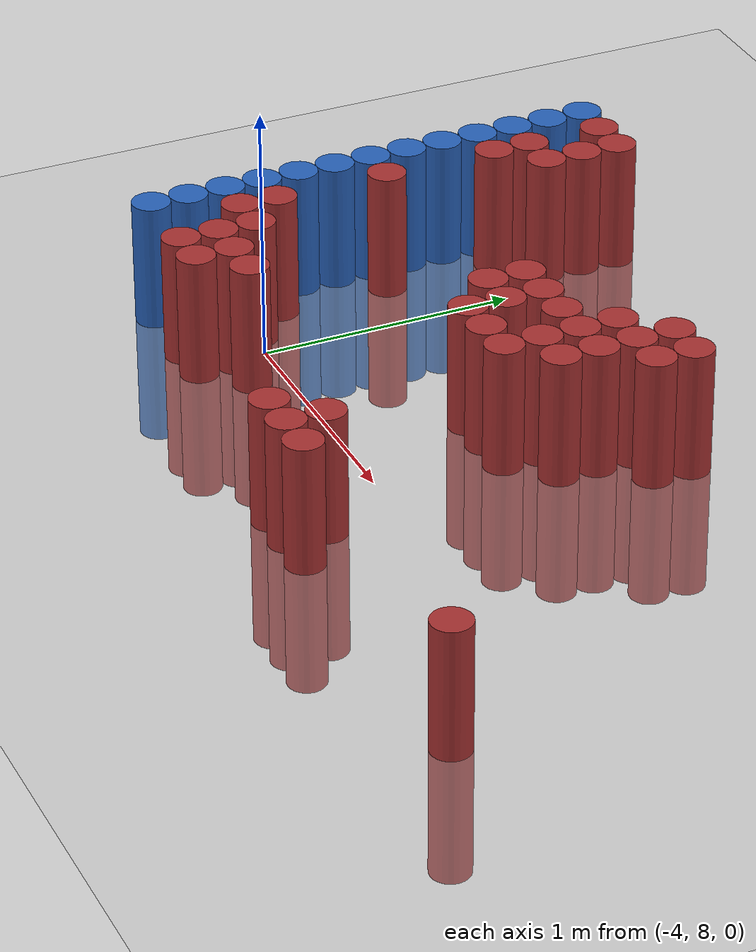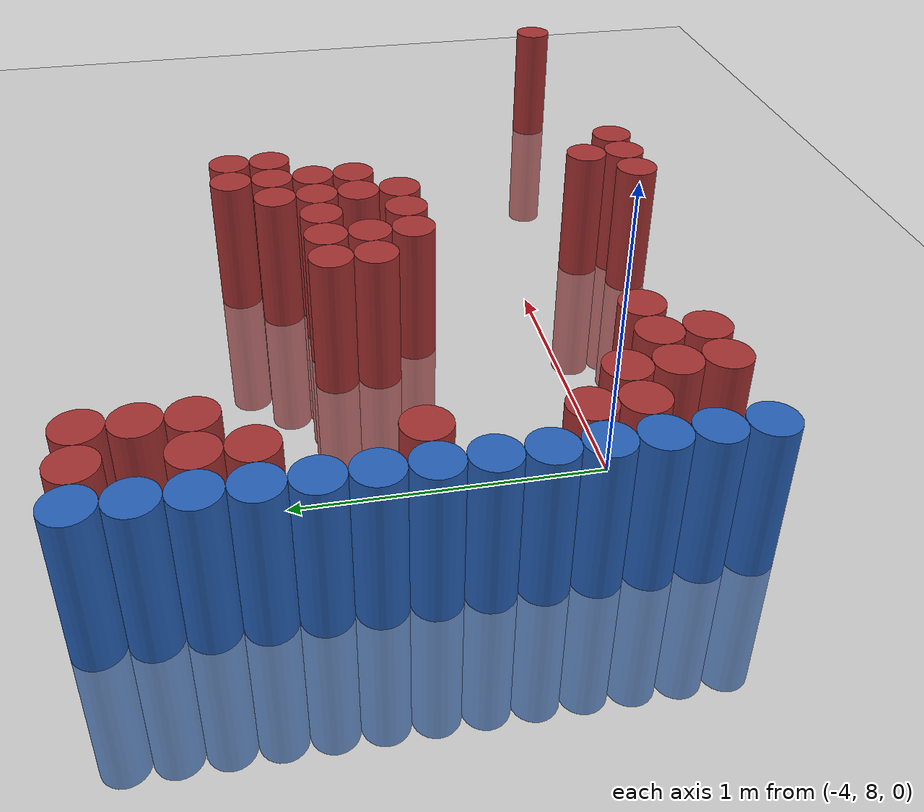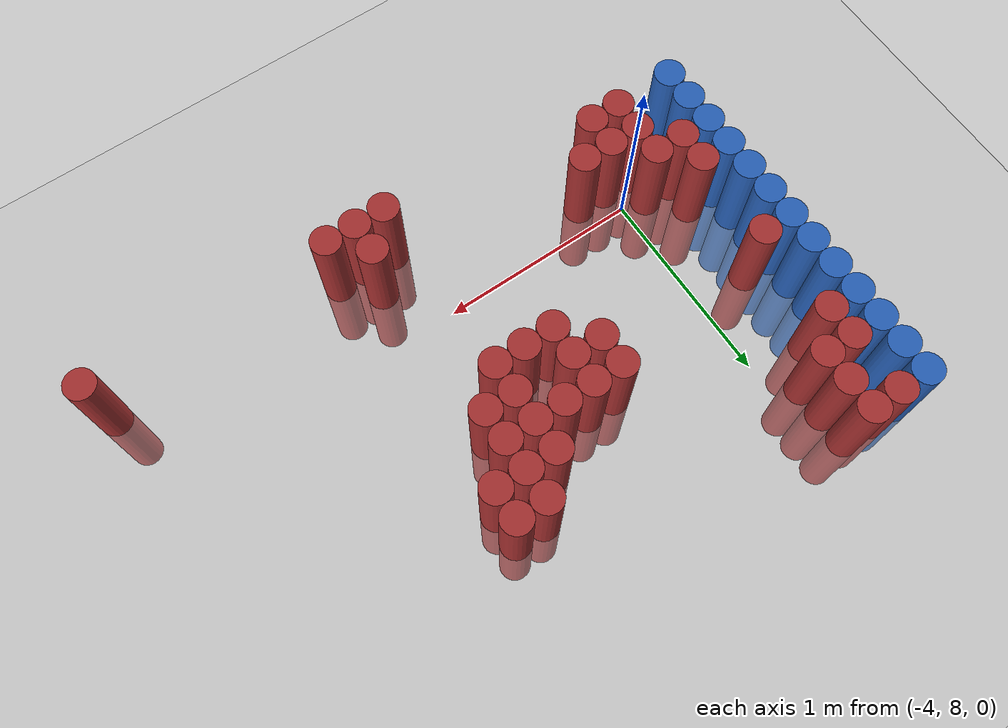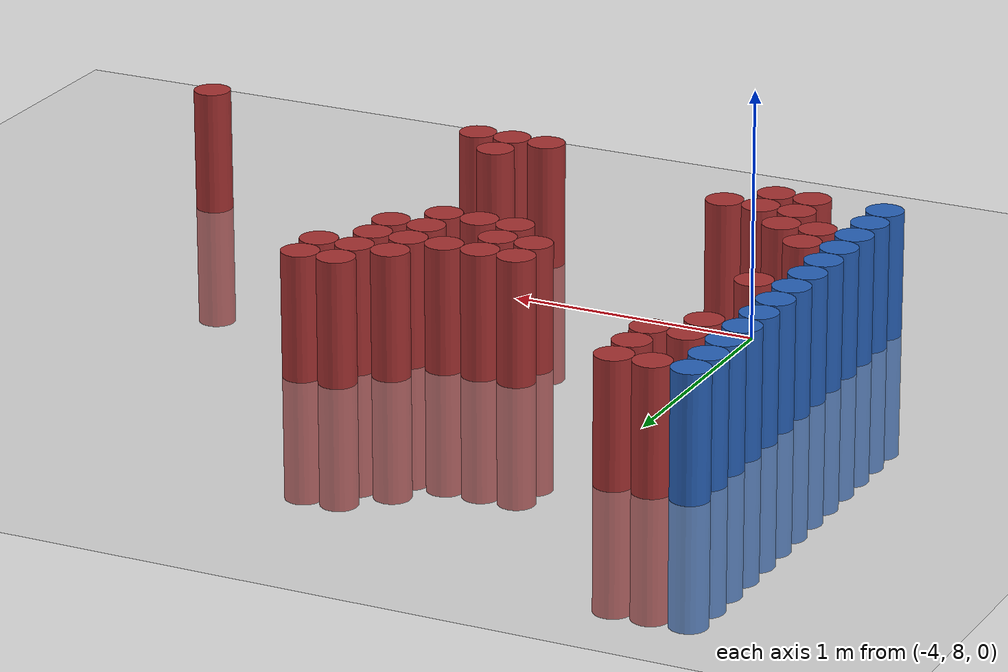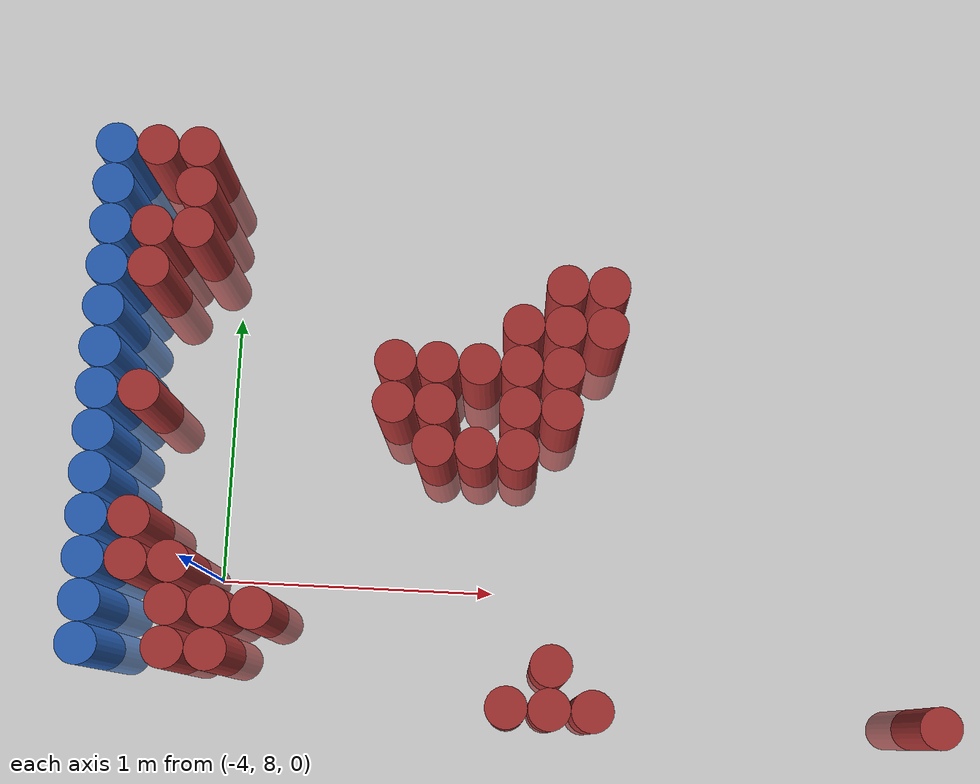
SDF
<sdf version="1.6">
 <world name="default">
  <model name="ground_plane">
   <static>1</static>
   <link name="link">
    <collision name="collision">
     <geometry><plane><normal>0 0 1</normal><size>100 100</size></plane></geometry>
     <surface><friction><ode><mu>100</mu><mu2>50</mu2></ode></friction></surface>
    </collision>
    <visual name="visual">
     <cast_shadows>0</cast_shadows>
     <geometry><plane><normal>0 0 1</normal><size>100 100</size></plane></geometry>
     <material>
      <script><uri>file://media/materials/scripts/gazebo.material</uri><name>Gazebo/Grey</name></script>
     </material>
    </visual>
   </link>
  </model>
  <model name="unit_cylinder_113">
   <static>1</static>
   <pose>-4.425000 7.725000 0.000000 0.000000 0.000000 0.000000</pose>
   <link name="link">
    <inertial>
     <mass>1</mass>
     <inertia><ixx>0.145833</ixx><ixy>0</ixy><ixz>0</ixz><iyy>0.145833</iyy><iyz>0</iyz><izz>0.125</izz></inertia>
    </inertial>
    <collision name="collision">
     <geometry><cylinder><radius>0.075000</radius><length>1</length></cylinder></geometry>
    </collision>
    <visual name="visual">
     <geometry><cylinder><radius>0.075000</radius><length>1</length></cylinder></geometry>
     <material>
      <ambient>0.152000 0.379000 0.720000 1</ambient>
      <diffuse>0.152000 0.379000 0.720000 1</diffuse>
     </material>
     <material>
      <script><name>Gazebo/Grey</name><uri>file://media/materials/scripts/gazebo.material</uri></script>
     </material>
    </visual>
   </link>
  </model>
  <model name="unit_cylinder_114">
   <static>1</static>
   <pose>-4.425000 7.875000 0.000000 0.000000 0.000000 0.000000</pose>
   <link name="link">
    <inertial>
     <mass>1</mass>
     <inertia><ixx>0.145833</ixx><ixy>0</ixy><ixz>0</ixz><iyy>0.145833</iyy><iyz>0</iyz><izz>0.125</izz></inertia>
    </inertial>
    <collision name="collision">
     <geometry><cylinder><radius>0.075000</radius><length>1</length></cylinder></geometry>
    </collision>
    <visual name="visual">
     <geometry><cylinder><radius>0.075000</radius><length>1</length></cylinder></geometry>
     <material>
      <ambient>0.152000 0.379000 0.720000 1</ambient>
      <diffuse>0.152000 0.379000 0.720000 1</diffuse>
     </material>
     <material>
      <script><name>Gazebo/Grey</name><uri>file://media/materials/scripts/gazebo.material</uri></script>
     </material>
    </visual>
   </link>
  </model>
  <model name="unit_cylinder_115">
   <static>1</static>
   <pose>-4.425000 8.025000 0.000000 0.000000 0.000000 0.000000</pose>
   <link name="link">
    <inertial>
     <mass>1</mass>
     <inertia><ixx>0.145833</ixx><ixy>0</ixy><ixz>0</ixz><iyy>0.145833</iyy><iyz>0</iyz><izz>0.125</izz></inertia>
    </inertial>
    <collision name="collision">
     <geometry><cylinder><radius>0.075000</radius><length>1</length></cylinder></geometry>
    </collision>
    <visual name="visual">
     <geometry><cylinder><radius>0.075000</radius><length>1</length></cylinder></geometry>
     <material>
      <ambient>0.152000 0.379000 0.720000 1</ambient>
      <diffuse>0.152000 0.379000 0.720000 1</diffuse>
     </material>
     <material>
      <script><name>Gazebo/Grey</name><uri>file://media/materials/scripts/gazebo.material</uri></script>
     </material>
    </visual>
   </link>
  </model>
  <model name="unit_cylinder_116">
   <static>1</static>
   <pose>-4.425000 8.175000 0.000000 0.000000 0.000000 0.000000</pose>
   <link name="link">
    <inertial>
     <mass>1</mass>
     <inertia><ixx>0.145833</ixx><ixy>0</ixy><ixz>0</ixz><iyy>0.145833</iyy><iyz>0</iyz><izz>0.125</izz></inertia>
    </inertial>
    <collision name="collision">
     <geometry><cylinder><radius>0.075000</radius><length>1</length></cylinder></geometry>
    </collision>
    <visual name="visual">
     <geometry><cylinder><radius>0.075000</radius><length>1</length></cylinder></geometry>
     <material>
      <ambient>0.152000 0.379000 0.720000 1</ambient>
      <diffuse>0.152000 0.379000 0.720000 1</diffuse>
     </material>
     <material>
      <script><name>Gazebo/Grey</name><uri>file://media/materials/scripts/gazebo.material</uri></script>
     </material>
    </visual>
   </link>
  </model>
  <model name="unit_cylinder_117">
   <static>1</static>
   <pose>-4.425000 8.325000 0.000000 0.000000 0.000000 0.000000</pose>
   <link name="link">
    <inertial>
     <mass>1</mass>
     <inertia><ixx>0.145833</ixx><ixy>0</ixy><ixz>0</ixz><iyy>0.145833</iyy><iyz>0</iyz><izz>0.125</izz></inertia>
    </inertial>
    <collision name="collision">
     <geometry><cylinder><radius>0.075000</radius><length>1</length></cylinder></geometry>
    </collision>
    <visual name="visual">
     <geometry><cylinder><radius>0.075000</radius><length>1</length></cylinder></geometry>
     <material>
      <ambient>0.152000 0.379000 0.720000 1</ambient>
      <diffuse>0.152000 0.379000 0.720000 1</diffuse>
     </material>
     <material>
      <script><name>Gazebo/Grey</name><uri>file://media/materials/scripts/gazebo.material</uri></script>
     </material>
    </visual>
   </link>
  </model>
  <model name="unit_cylinder_118">
   <static>1</static>
   <pose>-4.425000 8.475000 0.000000 0.000000 0.000000 0.000000</pose>
   <link name="link">
    <inertial>
     <mass>1</mass>
     <inertia><ixx>0.145833</ixx><ixy>0</ixy><ixz>0</ixz><iyy>0.145833</iyy><iyz>0</iyz><izz>0.125</izz></inertia>
    </inertial>
    <collision name="collision">
     <geometry><cylinder><radius>0.075000</radius><length>1</length></cylinder></geometry>
    </collision>
    <visual name="visual">
     <geometry><cylinder><radius>0.075000</radius><length>1</length></cylinder></geometry>
     <material>
      <ambient>0.152000 0.379000 0.720000 1</ambient>
      <diffuse>0.152000 0.379000 0.720000 1</diffuse>
     </material>
     <material>
      <script><name>Gazebo/Grey</name><uri>file://media/materials/scripts/gazebo.material</uri></script>
     </material>
    </visual>
   </link>
  </model>
  <model name="unit_cylinder_119">
   <static>1</static>
   <pose>-4.425000 8.625000 0.000000 0.000000 0.000000 0.000000</pose>
   <link name="link">
    <inertial>
     <mass>1</mass>
     <inertia><ixx>0.145833</ixx><ixy>0</ixy><ixz>0</ixz><iyy>0.145833</iyy><iyz>0</iyz><izz>0.125</izz></inertia>
    </inertial>
    <collision name="collision">
     <geometry><cylinder><radius>0.075000</radius><length>1</length></cylinder></geometry>
    </collision>
    <visual name="visual">
     <geometry><cylinder><radius>0.075000</radius><length>1</length></cylinder></geometry>
     <material>
      <ambient>0.152000 0.379000 0.720000 1</ambient>
      <diffuse>0.152000 0.379000 0.720000 1</diffuse>
     </material>
     <material>
      <script><name>Gazebo/Grey</name><uri>file://media/materials/scripts/gazebo.material</uri></script>
     </material>
    </visual>
   </link>
  </model>
  <model name="unit_cylinder_120">
   <static>1</static>
   <pose>-4.425000 8.775000 0.000000 0.000000 0.000000 0.000000</pose>
   <link name="link">
    <inertial>
     <mass>1</mass>
     <inertia><ixx>0.145833</ixx><ixy>0</ixy><ixz>0</ixz><iyy>0.145833</iyy><iyz>0</iyz><izz>0.125</izz></inertia>
    </inertial>
    <collision name="collision">
     <geometry><cylinder><radius>0.075000</radius><length>1</length></cylinder></geometry>
    </collision>
    <visual name="visual">
     <geometry><cylinder><radius>0.075000</radius><length>1</length></cylinder></geometry>
     <material>
      <ambient>0.152000 0.379000 0.720000 1</ambient>
      <diffuse>0.152000 0.379000 0.720000 1</diffuse>
     </material>
     <material>
      <script><name>Gazebo/Grey</name><uri>file://media/materials/scripts/gazebo.material</uri></script>
     </material>
    </visual>
   </link>
  </model>
  <model name="unit_cylinder_121">
   <static>1</static>
   <pose>-4.425000 8.925000 0.000000 0.000000 0.000000 0.000000</pose>
   <link name="link">
    <inertial>
     <mass>1</mass>
     <inertia><ixx>0.145833</ixx><ixy>0</ixy><ixz>0</ixz><iyy>0.145833</iyy><iyz>0</iyz><izz>0.125</izz></inertia>
    </inertial>
    <collision name="collision">
     <geometry><cylinder><radius>0.075000</radius><length>1</length></cylinder></geometry>
    </collision>
    <visual name="visual">
     <geometry><cylinder><radius>0.075000</radius><length>1</length></cylinder></geometry>
     <material>
      <ambient>0.152000 0.379000 0.720000 1</ambient>
      <diffuse>0.152000 0.379000 0.720000 1</diffuse>
     </material>
     <material>
      <script><name>Gazebo/Grey</name><uri>file://media/materials/scripts/gazebo.material</uri></script>
     </material>
    </visual>
   </link>
  </model>
  <model name="unit_cylinder_122">
   <static>1</static>
   <pose>-4.425000 9.075000 0.000000 0.000000 0.000000 0.000000</pose>
   <link name="link">
    <inertial>
     <mass>1</mass>
     <inertia><ixx>0.145833</ixx><ixy>0</ixy><ixz>0</ixz><iyy>0.145833</iyy><iyz>0</iyz><izz>0.125</izz></inertia>
    </inertial>
    <collision name="collision">
     <geometry><cylinder><radius>0.075000</radius><length>1</length></cylinder></geometry>
    </collision>
    <visual name="visual">
     <geometry><cylinder><radius>0.075000</radius><length>1</length></cylinder></geometry>
     <material>
      <ambient>0.152000 0.379000 0.720000 1</ambient>
      <diffuse>0.152000 0.379000 0.720000 1</diffuse>
     </material>
     <material>
      <script><name>Gazebo/Grey</name><uri>file://media/materials/scripts/gazebo.material</uri></script>
     </material>
    </visual>
   </link>
  </model>
  <model name="unit_cylinder_123">
   <static>1</static>
   <pose>-4.425000 9.225000 0.000000 0.000000 0.000000 0.000000</pose>
   <link name="link">
    <inertial>
     <mass>1</mass>
     <inertia><ixx>0.145833</ixx><ixy>0</ixy><ixz>0</ixz><iyy>0.145833</iyy><iyz>0</iyz><izz>0.125</izz></inertia>
    </inertial>
    <collision name="collision">
     <geometry><cylinder><radius>0.075000</radius><length>1</length></cylinder></geometry>
    </collision>
    <visual name="visual">
     <geometry><cylinder><radius>0.075000</radius><length>1</length></cylinder></geometry>
     <material>
      <ambient>0.152000 0.379000 0.720000 1</ambient>
      <diffuse>0.152000 0.379000 0.720000 1</diffuse>
     </material>
     <material>
      <script><name>Gazebo/Grey</name><uri>file://media/materials/scripts/gazebo.material</uri></script>
     </material>
    </visual>
   </link>
  </model>
  <model name="unit_cylinder_124">
   <static>1</static>
   <pose>-4.425000 9.375000 0.000000 0.000000 0.000000 0.000000</pose>
   <link name="link">
    <inertial>
     <mass>1</mass>
     <inertia><ixx>0.145833</ixx><ixy>0</ixy><ixz>0</ixz><iyy>0.145833</iyy><iyz>0</iyz><izz>0.125</izz></inertia>
    </inertial>
    <collision name="collision">
     <geometry><cylinder><radius>0.075000</radius><length>1</length></cylinder></geometry>
    </collision>
    <visual name="visual">
     <geometry><cylinder><radius>0.075000</radius><length>1</length></cylinder></geometry>
     <material>
      <ambient>0.152000 0.379000 0.720000 1</ambient>
      <diffuse>0.152000 0.379000 0.720000 1</diffuse>
     </material>
     <material>
      <script><name>Gazebo/Grey</name><uri>file://media/materials/scripts/gazebo.material</uri></script>
     </material>
    </visual>
   </link>
  </model>
  <model name="unit_cylinder_125">
   <static>1</static>
   <pose>-4.425000 9.525000 0.000000 0.000000 0.000000 0.000000</pose>
   <link name="link">
    <inertial>
     <mass>1</mass>
     <inertia><ixx>0.145833</ixx><ixy>0</ixy><ixz>0</ixz><iyy>0.145833</iyy><iyz>0</iyz><izz>0.125</izz></inertia>
    </inertial>
    <collision name="collision">
     <geometry><cylinder><radius>0.075000</radius><length>1</length></cylinder></geometry>
    </collision>
    <visual name="visual">
     <geometry><cylinder><radius>0.075000</radius><length>1</length></cylinder></geometry>
     <material>
      <ambient>0.152000 0.379000 0.720000 1</ambient>
      <diffuse>0.152000 0.379000 0.720000 1</diffuse>
     </material>
     <material>
      <script><name>Gazebo/Grey</name><uri>file://media/materials/scripts/gazebo.material</uri></script>
     </material>
    </visual>
   </link>
  </model>
  <model name="unit_cylinder_133">
   <static>1</static>
   <pose>-4.275000 8.025000 0.000000 0.000000 0.000000 0.000000</pose>
   <link name="link">
    <inertial>
     <mass>1</mass>
     <inertia><ixx>0.145833</ixx><ixy>0</ixy><ixz>0</ixz><iyy>0.145833</iyy><iyz>0</iyz><izz>0.125</izz></inertia>
    </inertial>
    <collision name="collision">
     <geometry><cylinder><radius>0.075000</radius><length>1</length></cylinder></geometry>
    </collision>
    <visual name="visual">
     <geometry><cylinder><radius>0.075000</radius><length>1</length></cylinder></geometry>
     <material>
      <ambient>0.648000 0.192000 0.192000 1</ambient>
      <diffuse>0.648000 0.192000 0.192000 1</diffuse>
     </material>
     <material>
      <script><name>Gazebo/Grey</name><uri>file://media/materials/scripts/gazebo.material</uri></script>
     </material>
    </visual>
   </link>
  </model>
  <model name="unit_cylinder_134">
   <static>1</static>
   <pose>-4.275000 8.175000 0.000000 0.000000 0.000000 0.000000</pose>
   <link name="link">
    <inertial>
     <mass>1</mass>
     <inertia><ixx>0.145833</ixx><ixy>0</ixy><ixz>0</ixz><iyy>0.145833</iyy><iyz>0</iyz><izz>0.125</izz></inertia>
    </inertial>
    <collision name="collision">
     <geometry><cylinder><radius>0.075000</radius><length>1</length></cylinder></geometry>
    </collision>
    <visual name="visual">
     <geometry><cylinder><radius>0.075000</radius><length>1</length></cylinder></geometry>
     <material>
      <ambient>0.648000 0.192000 0.192000 1</ambient>
      <diffuse>0.648000 0.192000 0.192000 1</diffuse>
     </material>
     <material>
      <script><name>Gazebo/Grey</name><uri>file://media/materials/scripts/gazebo.material</uri></script>
     </material>
    </visual>
   </link>
  </model>
  <model name="unit_cylinder_135">
   <static>1</static>
   <pose>-4.275000 8.625000 0.000000 0.000000 0.000000 0.000000</pose>
   <link name="link">
    <inertial>
     <mass>1</mass>
     <inertia><ixx>0.145833</ixx><ixy>0</ixy><ixz>0</ixz><iyy>0.145833</iyy><iyz>0</iyz><izz>0.125</izz></inertia>
    </inertial>
    <collision name="collision">
     <geometry><cylinder><radius>0.075000</radius><length>1</length></cylinder></geometry>
    </collision>
    <visual name="visual">
     <geometry><cylinder><radius>0.075000</radius><length>1</length></cylinder></geometry>
     <material>
      <ambient>0.648000 0.192000 0.192000 1</ambient>
      <diffuse>0.648000 0.192000 0.192000 1</diffuse>
     </material>
     <material>
      <script><name>Gazebo/Grey</name><uri>file://media/materials/scripts/gazebo.material</uri></script>
     </material>
    </visual>
   </link>
  </model>
  <model name="unit_cylinder_136">
   <static>1</static>
   <pose>-4.275000 9.075000 0.000000 0.000000 0.000000 0.000000</pose>
   <link name="link">
    <inertial>
     <mass>1</mass>
     <inertia><ixx>0.145833</ixx><ixy>0</ixy><ixz>0</ixz><iyy>0.145833</iyy><iyz>0</iyz><izz>0.125</izz></inertia>
    </inertial>
    <collision name="collision">
     <geometry><cylinder><radius>0.075000</radius><length>1</length></cylinder></geometry>
    </collision>
    <visual name="visual">
     <geometry><cylinder><radius>0.075000</radius><length>1</length></cylinder></geometry>
     <material>
      <ambient>0.648000 0.192000 0.192000 1</ambient>
      <diffuse>0.648000 0.192000 0.192000 1</diffuse>
     </material>
     <material>
      <script><name>Gazebo/Grey</name><uri>file://media/materials/scripts/gazebo.material</uri></script>
     </material>
    </visual>
   </link>
  </model>
  <model name="unit_cylinder_137">
   <static>1</static>
   <pose>-4.275000 9.225000 0.000000 0.000000 0.000000 0.000000</pose>
   <link name="link">
    <inertial>
     <mass>1</mass>
     <inertia><ixx>0.145833</ixx><ixy>0</ixy><ixz>0</ixz><iyy>0.145833</iyy><iyz>0</iyz><izz>0.125</izz></inertia>
    </inertial>
    <collision name="collision">
     <geometry><cylinder><radius>0.075000</radius><length>1</length></cylinder></geometry>
    </collision>
    <visual name="visual">
     <geometry><cylinder><radius>0.075000</radius><length>1</length></cylinder></geometry>
     <material>
      <ambient>0.648000 0.192000 0.192000 1</ambient>
      <diffuse>0.648000 0.192000 0.192000 1</diffuse>
     </material>
     <material>
      <script><name>Gazebo/Grey</name><uri>file://media/materials/scripts/gazebo.material</uri></script>
     </material>
    </visual>
   </link>
  </model>
  <model name="unit_cylinder_138">
   <static>1</static>
   <pose>-4.275000 9.525000 0.000000 0.000000 0.000000 0.000000</pose>
   <link name="link">
    <inertial>
     <mass>1</mass>
     <inertia><ixx>0.145833</ixx><ixy>0</ixy><ixz>0</ixz><iyy>0.145833</iyy><iyz>0</iyz><izz>0.125</izz></inertia>
    </inertial>
    <collision name="collision">
     <geometry><cylinder><radius>0.075000</radius><length>1</length></cylinder></geometry>
    </collision>
    <visual name="visual">
     <geometry><cylinder><radius>0.075000</radius><length>1</length></cylinder></geometry>
     <material>
      <ambient>0.648000 0.192000 0.192000 1</ambient>
      <diffuse>0.648000 0.192000 0.192000 1</diffuse>
     </material>
     <material>
      <script><name>Gazebo/Grey</name><uri>file://media/materials/scripts/gazebo.material</uri></script>
     </material>
    </visual>
   </link>
  </model>
  <model name="unit_cylinder_149">
   <static>1</static>
   <pose>-4.125000 7.725000 0.000000 0.000000 0.000000 0.000000</pose>
   <link name="link">
    <inertial>
     <mass>1</mass>
     <inertia><ixx>0.145833</ixx><ixy>0</ixy><ixz>0</ixz><iyy>0.145833</iyy><iyz>0</iyz><izz>0.125</izz></inertia>
    </inertial>
    <collision name="collision">
     <geometry><cylinder><radius>0.075000</radius><length>1</length></cylinder></geometry>
    </collision>
    <visual name="visual">
     <geometry><cylinder><radius>0.075000</radius><length>1</length></cylinder></geometry>
     <material>
      <ambient>0.648000 0.192000 0.192000 1</ambient>
      <diffuse>0.648000 0.192000 0.192000 1</diffuse>
     </material>
     <material>
      <script><name>Gazebo/Grey</name><uri>file://media/materials/scripts/gazebo.material</uri></script>
     </material>
    </visual>
   </link>
  </model>
  <model name="unit_cylinder_150">
   <static>1</static>
   <pose>-4.125000 7.875000 0.000000 0.000000 0.000000 0.000000</pose>
   <link name="link">
    <inertial>
     <mass>1</mass>
     <inertia><ixx>0.145833</ixx><ixy>0</ixy><ixz>0</ixz><iyy>0.145833</iyy><iyz>0</iyz><izz>0.125</izz></inertia>
    </inertial>
    <collision name="collision">
     <geometry><cylinder><radius>0.075000</radius><length>1</length></cylinder></geometry>
    </collision>
    <visual name="visual">
     <geometry><cylinder><radius>0.075000</radius><length>1</length></cylinder></geometry>
     <material>
      <ambient>0.648000 0.192000 0.192000 1</ambient>
      <diffuse>0.648000 0.192000 0.192000 1</diffuse>
     </material>
     <material>
      <script><name>Gazebo/Grey</name><uri>file://media/materials/scripts/gazebo.material</uri></script>
     </material>
    </visual>
   </link>
  </model>
  <model name="unit_cylinder_151">
   <static>1</static>
   <pose>-4.125000 8.025000 0.000000 0.000000 0.000000 0.000000</pose>
   <link name="link">
    <inertial>
     <mass>1</mass>
     <inertia><ixx>0.145833</ixx><ixy>0</ixy><ixz>0</ixz><iyy>0.145833</iyy><iyz>0</iyz><izz>0.125</izz></inertia>
    </inertial>
    <collision name="collision">
     <geometry><cylinder><radius>0.075000</radius><length>1</length></cylinder></geometry>
    </collision>
    <visual name="visual">
     <geometry><cylinder><radius>0.075000</radius><length>1</length></cylinder></geometry>
     <material>
      <ambient>0.648000 0.192000 0.192000 1</ambient>
      <diffuse>0.648000 0.192000 0.192000 1</diffuse>
     </material>
     <material>
      <script><name>Gazebo/Grey</name><uri>file://media/materials/scripts/gazebo.material</uri></script>
     </material>
    </visual>
   </link>
  </model>
  <model name="unit_cylinder_152">
   <static>1</static>
   <pose>-4.125000 9.225000 0.000000 0.000000 0.000000 0.000000</pose>
   <link name="link">
    <inertial>
     <mass>1</mass>
     <inertia><ixx>0.145833</ixx><ixy>0</ixy><ixz>0</ixz><iyy>0.145833</iyy><iyz>0</iyz><izz>0.125</izz></inertia>
    </inertial>
    <collision name="collision">
     <geometry><cylinder><radius>0.075000</radius><length>1</length></cylinder></geometry>
    </collision>
    <visual name="visual">
     <geometry><cylinder><radius>0.075000</radius><length>1</length></cylinder></geometry>
     <material>
      <ambient>0.648000 0.192000 0.192000 1</ambient>
      <diffuse>0.648000 0.192000 0.192000 1</diffuse>
     </material>
     <material>
      <script><name>Gazebo/Grey</name><uri>file://media/materials/scripts/gazebo.material</uri></script>
     </material>
    </visual>
   </link>
  </model>
  <model name="unit_cylinder_153">
   <static>1</static>
   <pose>-4.125000 9.375000 0.000000 0.000000 0.000000 0.000000</pose>
   <link name="link">
    <inertial>
     <mass>1</mass>
     <inertia><ixx>0.145833</ixx><ixy>0</ixy><ixz>0</ixz><iyy>0.145833</iyy><iyz>0</iyz><izz>0.125</izz></inertia>
    </inertial>
    <collision name="collision">
     <geometry><cylinder><radius>0.075000</radius><length>1</length></cylinder></geometry>
    </collision>
    <visual name="visual">
     <geometry><cylinder><radius>0.075000</radius><length>1</length></cylinder></geometry>
     <material>
      <ambient>0.648000 0.192000 0.192000 1</ambient>
      <diffuse>0.648000 0.192000 0.192000 1</diffuse>
     </material>
     <material>
      <script><name>Gazebo/Grey</name><uri>file://media/materials/scripts/gazebo.material</uri></script>
     </material>
    </visual>
   </link>
  </model>
  <model name="unit_cylinder_154">
   <static>1</static>
   <pose>-4.125000 9.525000 0.000000 0.000000 0.000000 0.000000</pose>
   <link name="link">
    <inertial>
     <mass>1</mass>
     <inertia><ixx>0.145833</ixx><ixy>0</ixy><ixz>0</ixz><iyy>0.145833</iyy><iyz>0</iyz><izz>0.125</izz></inertia>
    </inertial>
    <collision name="collision">
     <geometry><cylinder><radius>0.075000</radius><length>1</length></cylinder></geometry>
    </collision>
    <visual name="visual">
     <geometry><cylinder><radius>0.075000</radius><length>1</length></cylinder></geometry>
     <material>
      <ambient>0.648000 0.192000 0.192000 1</ambient>
      <diffuse>0.648000 0.192000 0.192000 1</diffuse>
     </material>
     <material>
      <script><name>Gazebo/Grey</name><uri>file://media/materials/scripts/gazebo.material</uri></script>
     </material>
    </visual>
   </link>
  </model>
  <model name="unit_cylinder_161">
   <static>1</static>
   <pose>-3.975000 7.725000 0.000000 0.000000 0.000000 0.000000</pose>
   <link name="link">
    <inertial>
     <mass>1</mass>
     <inertia><ixx>0.145833</ixx><ixy>0</ixy><ixz>0</ixz><iyy>0.145833</iyy><iyz>0</iyz><izz>0.125</izz></inertia>
    </inertial>
    <collision name="collision">
     <geometry><cylinder><radius>0.075000</radius><length>1</length></cylinder></geometry>
    </collision>
    <visual name="visual">
     <geometry><cylinder><radius>0.075000</radius><length>1</length></cylinder></geometry>
     <material>
      <ambient>0.648000 0.192000 0.192000 1</ambient>
      <diffuse>0.648000 0.192000 0.192000 1</diffuse>
     </material>
     <material>
      <script><name>Gazebo/Grey</name><uri>file://media/materials/scripts/gazebo.material</uri></script>
     </material>
    </visual>
   </link>
  </model>
  <model name="unit_cylinder_162">
   <static>1</static>
   <pose>-3.975000 7.875000 0.000000 0.000000 0.000000 0.000000</pose>
   <link name="link">
    <inertial>
     <mass>1</mass>
     <inertia><ixx>0.145833</ixx><ixy>0</ixy><ixz>0</ixz><iyy>0.145833</iyy><iyz>0</iyz><izz>0.125</izz></inertia>
    </inertial>
    <collision name="collision">
     <geometry><cylinder><radius>0.075000</radius><length>1</length></cylinder></geometry>
    </collision>
    <visual name="visual">
     <geometry><cylinder><radius>0.075000</radius><length>1</length></cylinder></geometry>
     <material>
      <ambient>0.648000 0.192000 0.192000 1</ambient>
      <diffuse>0.648000 0.192000 0.192000 1</diffuse>
     </material>
     <material>
      <script><name>Gazebo/Grey</name><uri>file://media/materials/scripts/gazebo.material</uri></script>
     </material>
    </visual>
   </link>
  </model>
  <model name="unit_cylinder_167">
   <static>1</static>
   <pose>-3.825000 7.875000 0.000000 0.000000 0.000000 0.000000</pose>
   <link name="link">
    <inertial>
     <mass>1</mass>
     <inertia><ixx>0.145833</ixx><ixy>0</ixy><ixz>0</ixz><iyy>0.145833</iyy><iyz>0</iyz><izz>0.125</izz></inertia>
    </inertial>
    <collision name="collision">
     <geometry><cylinder><radius>0.075000</radius><length>1</length></cylinder></geometry>
    </collision>
    <visual name="visual">
     <geometry><cylinder><radius>0.075000</radius><length>1</length></cylinder></geometry>
     <material>
      <ambient>0.648000 0.192000 0.192000 1</ambient>
      <diffuse>0.648000 0.192000 0.192000 1</diffuse>
     </material>
     <material>
      <script><name>Gazebo/Grey</name><uri>file://media/materials/scripts/gazebo.material</uri></script>
     </material>
    </visual>
   </link>
  </model>
  <model name="unit_cylinder_175">
   <static>1</static>
   <pose>-3.375000 8.625000 0.000000 0.000000 0.000000 0.000000</pose>
   <link name="link">
    <inertial>
     <mass>1</mass>
     <inertia><ixx>0.145833</ixx><ixy>0</ixy><ixz>0</ixz><iyy>0.145833</iyy><iyz>0</iyz><izz>0.125</izz></inertia>
    </inertial>
    <collision name="collision">
     <geometry><cylinder><radius>0.075000</radius><length>1</length></cylinder></geometry>
    </collision>
    <visual name="visual">
     <geometry><cylinder><radius>0.075000</radius><length>1</length></cylinder></geometry>
     <material>
      <ambient>0.648000 0.192000 0.192000 1</ambient>
      <diffuse>0.648000 0.192000 0.192000 1</diffuse>
     </material>
     <material>
      <script><name>Gazebo/Grey</name><uri>file://media/materials/scripts/gazebo.material</uri></script>
     </material>
    </visual>
   </link>
  </model>
  <model name="unit_cylinder_176">
   <static>1</static>
   <pose>-3.375000 8.775000 0.000000 0.000000 0.000000 0.000000</pose>
   <link name="link">
    <inertial>
     <mass>1</mass>
     <inertia><ixx>0.145833</ixx><ixy>0</ixy><ixz>0</ixz><iyy>0.145833</iyy><iyz>0</iyz><izz>0.125</izz></inertia>
    </inertial>
    <collision name="collision">
     <geometry><cylinder><radius>0.075000</radius><length>1</length></cylinder></geometry>
    </collision>
    <visual name="visual">
     <geometry><cylinder><radius>0.075000</radius><length>1</length></cylinder></geometry>
     <material>
      <ambient>0.648000 0.192000 0.192000 1</ambient>
      <diffuse>0.648000 0.192000 0.192000 1</diffuse>
     </material>
     <material>
      <script><name>Gazebo/Grey</name><uri>file://media/materials/scripts/gazebo.material</uri></script>
     </material>
    </visual>
   </link>
  </model>
  <model name="unit_cylinder_180">
   <static>1</static>
   <pose>-3.225000 8.475000 0.000000 0.000000 0.000000 0.000000</pose>
   <link name="link">
    <inertial>
     <mass>1</mass>
     <inertia><ixx>0.145833</ixx><ixy>0</ixy><ixz>0</ixz><iyy>0.145833</iyy><iyz>0</iyz><izz>0.125</izz></inertia>
    </inertial>
    <collision name="collision">
     <geometry><cylinder><radius>0.075000</radius><length>1</length></cylinder></geometry>
    </collision>
    <visual name="visual">
     <geometry><cylinder><radius>0.075000</radius><length>1</length></cylinder></geometry>
     <material>
      <ambient>0.648000 0.192000 0.192000 1</ambient>
      <diffuse>0.648000 0.192000 0.192000 1</diffuse>
     </material>
     <material>
      <script><name>Gazebo/Grey</name><uri>file://media/materials/scripts/gazebo.material</uri></script>
     </material>
    </visual>
   </link>
  </model>
  <model name="unit_cylinder_181">
   <static>1</static>
   <pose>-3.225000 8.625000 0.000000 0.000000 0.000000 0.000000</pose>
   <link name="link">
    <inertial>
     <mass>1</mass>
     <inertia><ixx>0.145833</ixx><ixy>0</ixy><ixz>0</ixz><iyy>0.145833</iyy><iyz>0</iyz><izz>0.125</izz></inertia>
    </inertial>
    <collision name="collision">
     <geometry><cylinder><radius>0.075000</radius><length>1</length></cylinder></geometry>
    </collision>
    <visual name="visual">
     <geometry><cylinder><radius>0.075000</radius><length>1</length></cylinder></geometry>
     <material>
      <ambient>0.648000 0.192000 0.192000 1</ambient>
      <diffuse>0.648000 0.192000 0.192000 1</diffuse>
     </material>
     <material>
      <script><name>Gazebo/Grey</name><uri>file://media/materials/scripts/gazebo.material</uri></script>
     </material>
    </visual>
   </link>
  </model>
  <model name="unit_cylinder_182">
   <static>1</static>
   <pose>-3.225000 8.775000 0.000000 0.000000 0.000000 0.000000</pose>
   <link name="link">
    <inertial>
     <mass>1</mass>
     <inertia><ixx>0.145833</ixx><ixy>0</ixy><ixz>0</ixz><iyy>0.145833</iyy><iyz>0</iyz><izz>0.125</izz></inertia>
    </inertial>
    <collision name="collision">
     <geometry><cylinder><radius>0.075000</radius><length>1</length></cylinder></geometry>
    </collision>
    <visual name="visual">
     <geometry><cylinder><radius>0.075000</radius><length>1</length></cylinder></geometry>
     <material>
      <ambient>0.648000 0.192000 0.192000 1</ambient>
      <diffuse>0.648000 0.192000 0.192000 1</diffuse>
     </material>
     <material>
      <script><name>Gazebo/Grey</name><uri>file://media/materials/scripts/gazebo.material</uri></script>
     </material>
    </visual>
   </link>
  </model>
  <model name="unit_cylinder_190">
   <static>1</static>
   <pose>-3.075000 8.475000 0.000000 0.000000 0.000000 0.000000</pose>
   <link name="link">
    <inertial>
     <mass>1</mass>
     <inertia><ixx>0.145833</ixx><ixy>0</ixy><ixz>0</ixz><iyy>0.145833</iyy><iyz>0</iyz><izz>0.125</izz></inertia>
    </inertial>
    <collision name="collision">
     <geometry><cylinder><radius>0.075000</radius><length>1</length></cylinder></geometry>
    </collision>
    <visual name="visual">
     <geometry><cylinder><radius>0.075000</radius><length>1</length></cylinder></geometry>
     <material>
      <ambient>0.648000 0.192000 0.192000 1</ambient>
      <diffuse>0.648000 0.192000 0.192000 1</diffuse>
     </material>
     <material>
      <script><name>Gazebo/Grey</name><uri>file://media/materials/scripts/gazebo.material</uri></script>
     </material>
    </visual>
   </link>
  </model>
  <model name="unit_cylinder_191">
   <static>1</static>
   <pose>-3.075000 8.775000 0.000000 0.000000 0.000000 0.000000</pose>
   <link name="link">
    <inertial>
     <mass>1</mass>
     <inertia><ixx>0.145833</ixx><ixy>0</ixy><ixz>0</ixz><iyy>0.145833</iyy><iyz>0</iyz><izz>0.125</izz></inertia>
    </inertial>
    <collision name="collision">
     <geometry><cylinder><radius>0.075000</radius><length>1</length></cylinder></geometry>
    </collision>
    <visual name="visual">
     <geometry><cylinder><radius>0.075000</radius><length>1</length></cylinder></geometry>
     <material>
      <ambient>0.648000 0.192000 0.192000 1</ambient>
      <diffuse>0.648000 0.192000 0.192000 1</diffuse>
     </material>
     <material>
      <script><name>Gazebo/Grey</name><uri>file://media/materials/scripts/gazebo.material</uri></script>
     </material>
    </visual>
   </link>
  </model>
  <model name="unit_cylinder_196">
   <static>1</static>
   <pose>-2.925000 7.575000 0.000000 0.000000 0.000000 0.000000</pose>
   <link name="link">
    <inertial>
     <mass>1</mass>
     <inertia><ixx>0.145833</ixx><ixy>0</ixy><ixz>0</ixz><iyy>0.145833</iyy><iyz>0</iyz><izz>0.125</izz></inertia>
    </inertial>
    <collision name="collision">
     <geometry><cylinder><radius>0.075000</radius><length>1</length></cylinder></geometry>
    </collision>
    <visual name="visual">
     <geometry><cylinder><radius>0.075000</radius><length>1</length></cylinder></geometry>
     <material>
      <ambient>0.648000 0.192000 0.192000 1</ambient>
      <diffuse>0.648000 0.192000 0.192000 1</diffuse>
     </material>
     <material>
      <script><name>Gazebo/Grey</name><uri>file://media/materials/scripts/gazebo.material</uri></script>
     </material>
    </visual>
   </link>
  </model>
  <model name="unit_cylinder_197">
   <static>1</static>
   <pose>-2.925000 8.475000 0.000000 0.000000 0.000000 0.000000</pose>
   <link name="link">
    <inertial>
     <mass>1</mass>
     <inertia><ixx>0.145833</ixx><ixy>0</ixy><ixz>0</ixz><iyy>0.145833</iyy><iyz>0</iyz><izz>0.125</izz></inertia>
    </inertial>
    <collision name="collision">
     <geometry><cylinder><radius>0.075000</radius><length>1</length></cylinder></geometry>
    </collision>
    <visual name="visual">
     <geometry><cylinder><radius>0.075000</radius><length>1</length></cylinder></geometry>
     <material>
      <ambient>0.648000 0.192000 0.192000 1</ambient>
      <diffuse>0.648000 0.192000 0.192000 1</diffuse>
     </material>
     <material>
      <script><name>Gazebo/Grey</name><uri>file://media/materials/scripts/gazebo.material</uri></script>
     </material>
    </visual>
   </link>
  </model>
  <model name="unit_cylinder_198">
   <static>1</static>
   <pose>-2.925000 8.625000 0.000000 0.000000 0.000000 0.000000</pose>
   <link name="link">
    <inertial>
     <mass>1</mass>
     <inertia><ixx>0.145833</ixx><ixy>0</ixy><ixz>0</ixz><iyy>0.145833</iyy><iyz>0</iyz><izz>0.125</izz></inertia>
    </inertial>
    <collision name="collision">
     <geometry><cylinder><radius>0.075000</radius><length>1</length></cylinder></geometry>
    </collision>
    <visual name="visual">
     <geometry><cylinder><radius>0.075000</radius><length>1</length></cylinder></geometry>
     <material>
      <ambient>0.648000 0.192000 0.192000 1</ambient>
      <diffuse>0.648000 0.192000 0.192000 1</diffuse>
     </material>
     <material>
      <script><name>Gazebo/Grey</name><uri>file://media/materials/scripts/gazebo.material</uri></script>
     </material>
    </visual>
   </link>
  </model>
  <model name="unit_cylinder_199">
   <static>1</static>
   <pose>-2.925000 8.775000 0.000000 0.000000 0.000000 0.000000</pose>
   <link name="link">
    <inertial>
     <mass>1</mass>
     <inertia><ixx>0.145833</ixx><ixy>0</ixy><ixz>0</ixz><iyy>0.145833</iyy><iyz>0</iyz><izz>0.125</izz></inertia>
    </inertial>
    <collision name="collision">
     <geometry><cylinder><radius>0.075000</radius><length>1</length></cylinder></geometry>
    </collision>
    <visual name="visual">
     <geometry><cylinder><radius>0.075000</radius><length>1</length></cylinder></geometry>
     <material>
      <ambient>0.648000 0.192000 0.192000 1</ambient>
      <diffuse>0.648000 0.192000 0.192000 1</diffuse>
     </material>
     <material>
      <script><name>Gazebo/Grey</name><uri>file://media/materials/scripts/gazebo.material</uri></script>
     </material>
    </visual>
   </link>
  </model>
  <model name="unit_cylinder_200">
   <static>1</static>
   <pose>-2.925000 8.925000 0.000000 0.000000 0.000000 0.000000</pose>
   <link name="link">
    <inertial>
     <mass>1</mass>
     <inertia><ixx>0.145833</ixx><ixy>0</ixy><ixz>0</ixz><iyy>0.145833</iyy><iyz>0</iyz><izz>0.125</izz></inertia>
    </inertial>
    <collision name="collision">
     <geometry><cylinder><radius>0.075000</radius><length>1</length></cylinder></geometry>
    </collision>
    <visual name="visual">
     <geometry><cylinder><radius>0.075000</radius><length>1</length></cylinder></geometry>
     <material>
      <ambient>0.648000 0.192000 0.192000 1</ambient>
      <diffuse>0.648000 0.192000 0.192000 1</diffuse>
     </material>
     <material>
      <script><name>Gazebo/Grey</name><uri>file://media/materials/scripts/gazebo.material</uri></script>
     </material>
    </visual>
   </link>
  </model>
  <model name="unit_cylinder_203">
   <static>1</static>
   <pose>-2.775000 7.575000 0.000000 0.000000 0.000000 0.000000</pose>
   <link name="link">
    <inertial>
     <mass>1</mass>
     <inertia><ixx>0.145833</ixx><ixy>0</ixy><ixz>0</ixz><iyy>0.145833</iyy><iyz>0</iyz><izz>0.125</izz></inertia>
    </inertial>
    <collision name="collision">
     <geometry><cylinder><radius>0.075000</radius><length>1</length></cylinder></geometry>
    </collision>
    <visual name="visual">
     <geometry><cylinder><radius>0.075000</radius><length>1</length></cylinder></geometry>
     <material>
      <ambient>0.648000 0.192000 0.192000 1</ambient>
      <diffuse>0.648000 0.192000 0.192000 1</diffuse>
     </material>
     <material>
      <script><name>Gazebo/Grey</name><uri>file://media/materials/scripts/gazebo.material</uri></script>
     </material>
    </visual>
   </link>
  </model>
  <model name="unit_cylinder_204">
   <static>1</static>
   <pose>-2.775000 7.725000 0.000000 0.000000 0.000000 0.000000</pose>
   <link name="link">
    <inertial>
     <mass>1</mass>
     <inertia><ixx>0.145833</ixx><ixy>0</ixy><ixz>0</ixz><iyy>0.145833</iyy><iyz>0</iyz><izz>0.125</izz></inertia>
    </inertial>
    <collision name="collision">
     <geometry><cylinder><radius>0.075000</radius><length>1</length></cylinder></geometry>
    </collision>
    <visual name="visual">
     <geometry><cylinder><radius>0.075000</radius><length>1</length></cylinder></geometry>
     <material>
      <ambient>0.648000 0.192000 0.192000 1</ambient>
      <diffuse>0.648000 0.192000 0.192000 1</diffuse>
     </material>
     <material>
      <script><name>Gazebo/Grey</name><uri>file://media/materials/scripts/gazebo.material</uri></script>
     </material>
    </visual>
   </link>
  </model>
  <model name="unit_cylinder_205">
   <static>1</static>
   <pose>-2.775000 8.625000 0.000000 0.000000 0.000000 0.000000</pose>
   <link name="link">
    <inertial>
     <mass>1</mass>
     <inertia><ixx>0.145833</ixx><ixy>0</ixy><ixz>0</ixz><iyy>0.145833</iyy><iyz>0</iyz><izz>0.125</izz></inertia>
    </inertial>
    <collision name="collision">
     <geometry><cylinder><radius>0.075000</radius><length>1</length></cylinder></geometry>
    </collision>
    <visual name="visual">
     <geometry><cylinder><radius>0.075000</radius><length>1</length></cylinder></geometry>
     <material>
      <ambient>0.648000 0.192000 0.192000 1</ambient>
      <diffuse>0.648000 0.192000 0.192000 1</diffuse>
     </material>
     <material>
      <script><name>Gazebo/Grey</name><uri>file://media/materials/scripts/gazebo.material</uri></script>
     </material>
    </visual>
   </link>
  </model>
  <model name="unit_cylinder_206">
   <static>1</static>
   <pose>-2.775000 8.775000 0.000000 0.000000 0.000000 0.000000</pose>
   <link name="link">
    <inertial>
     <mass>1</mass>
     <inertia><ixx>0.145833</ixx><ixy>0</ixy><ixz>0</ixz><iyy>0.145833</iyy><iyz>0</iyz><izz>0.125</izz></inertia>
    </inertial>
    <collision name="collision">
     <geometry><cylinder><radius>0.075000</radius><length>1</length></cylinder></geometry>
    </collision>
    <visual name="visual">
     <geometry><cylinder><radius>0.075000</radius><length>1</length></cylinder></geometry>
     <material>
      <ambient>0.648000 0.192000 0.192000 1</ambient>
      <diffuse>0.648000 0.192000 0.192000 1</diffuse>
     </material>
     <material>
      <script><name>Gazebo/Grey</name><uri>file://media/materials/scripts/gazebo.material</uri></script>
     </material>
    </visual>
   </link>
  </model>
  <model name="unit_cylinder_207">
   <static>1</static>
   <pose>-2.775000 8.925000 0.000000 0.000000 0.000000 0.000000</pose>
   <link name="link">
    <inertial>
     <mass>1</mass>
     <inertia><ixx>0.145833</ixx><ixy>0</ixy><ixz>0</ixz><iyy>0.145833</iyy><iyz>0</iyz><izz>0.125</izz></inertia>
    </inertial>
    <collision name="collision">
     <geometry><cylinder><radius>0.075000</radius><length>1</length></cylinder></geometry>
    </collision>
    <visual name="visual">
     <geometry><cylinder><radius>0.075000</radius><length>1</length></cylinder></geometry>
     <material>
      <ambient>0.648000 0.192000 0.192000 1</ambient>
      <diffuse>0.648000 0.192000 0.192000 1</diffuse>
     </material>
     <material>
      <script><name>Gazebo/Grey</name><uri>file://media/materials/scripts/gazebo.material</uri></script>
     </material>
    </visual>
   </link>
  </model>
  <model name="unit_cylinder_208">
   <static>1</static>
   <pose>-2.775000 9.075000 0.000000 0.000000 0.000000 0.000000</pose>
   <link name="link">
    <inertial>
     <mass>1</mass>
     <inertia><ixx>0.145833</ixx><ixy>0</ixy><ixz>0</ixz><iyy>0.145833</iyy><iyz>0</iyz><izz>0.125</izz></inertia>
    </inertial>
    <collision name="collision">
     <geometry><cylinder><radius>0.075000</radius><length>1</length></cylinder></geometry>
    </collision>
    <visual name="visual">
     <geometry><cylinder><radius>0.075000</radius><length>1</length></cylinder></geometry>
     <material>
      <ambient>0.648000 0.192000 0.192000 1</ambient>
      <diffuse>0.648000 0.192000 0.192000 1</diffuse>
     </material>
     <material>
      <script><name>Gazebo/Grey</name><uri>file://media/materials/scripts/gazebo.material</uri></script>
     </material>
    </visual>
   </link>
  </model>
  <model name="unit_cylinder_213">
   <static>1</static>
   <pose>-2.625000 7.575000 0.000000 0.000000 0.000000 0.000000</pose>
   <link name="link">
    <inertial>
     <mass>1</mass>
     <inertia><ixx>0.145833</ixx><ixy>0</ixy><ixz>0</ixz><iyy>0.145833</iyy><iyz>0</iyz><izz>0.125</izz></inertia>
    </inertial>
    <collision name="collision">
     <geometry><cylinder><radius>0.075000</radius><length>1</length></cylinder></geometry>
    </collision>
    <visual name="visual">
     <geometry><cylinder><radius>0.075000</radius><length>1</length></cylinder></geometry>
     <material>
      <ambient>0.648000 0.192000 0.192000 1</ambient>
      <diffuse>0.648000 0.192000 0.192000 1</diffuse>
     </material>
     <material>
      <script><name>Gazebo/Grey</name><uri>file://media/materials/scripts/gazebo.material</uri></script>
     </material>
    </visual>
   </link>
  </model>
  <model name="unit_cylinder_214">
   <static>1</static>
   <pose>-2.625000 8.925000 0.000000 0.000000 0.000000 0.000000</pose>
   <link name="link">
    <inertial>
     <mass>1</mass>
     <inertia><ixx>0.145833</ixx><ixy>0</ixy><ixz>0</ixz><iyy>0.145833</iyy><iyz>0</iyz><izz>0.125</izz></inertia>
    </inertial>
    <collision name="collision">
     <geometry><cylinder><radius>0.075000</radius><length>1</length></cylinder></geometry>
    </collision>
    <visual name="visual">
     <geometry><cylinder><radius>0.075000</radius><length>1</length></cylinder></geometry>
     <material>
      <ambient>0.648000 0.192000 0.192000 1</ambient>
      <diffuse>0.648000 0.192000 0.192000 1</diffuse>
     </material>
     <material>
      <script><name>Gazebo/Grey</name><uri>file://media/materials/scripts/gazebo.material</uri></script>
     </material>
    </visual>
   </link>
  </model>
  <model name="unit_cylinder_215">
   <static>1</static>
   <pose>-2.625000 9.075000 0.000000 0.000000 0.000000 0.000000</pose>
   <link name="link">
    <inertial>
     <mass>1</mass>
     <inertia><ixx>0.145833</ixx><ixy>0</ixy><ixz>0</ixz><iyy>0.145833</iyy><iyz>0</iyz><izz>0.125</izz></inertia>
    </inertial>
    <collision name="collision">
     <geometry><cylinder><radius>0.075000</radius><length>1</length></cylinder></geometry>
    </collision>
    <visual name="visual">
     <geometry><cylinder><radius>0.075000</radius><length>1</length></cylinder></geometry>
     <material>
      <ambient>0.648000 0.192000 0.192000 1</ambient>
      <diffuse>0.648000 0.192000 0.192000 1</diffuse>
     </material>
     <material>
      <script><name>Gazebo/Grey</name><uri>file://media/materials/scripts/gazebo.material</uri></script>
     </material>
    </visual>
   </link>
  </model>
  <model name="unit_cylinder_224">
   <static>1</static>
   <pose>-1.425000 7.575000 0.000000 0.000000 0.000000 0.000000</pose>
   <link name="link">
    <inertial>
     <mass>1</mass>
     <inertia><ixx>0.145833</ixx><ixy>0</ixy><ixz>0</ixz><iyy>0.145833</iyy><iyz>0</iyz><izz>0.125</izz></inertia>
    </inertial>
    <collision name="collision">
     <geometry><cylinder><radius>0.075000</radius><length>1</length></cylinder></geometry>
    </collision>
    <visual name="visual">
     <geometry><cylinder><radius>0.075000</radius><length>1</length></cylinder></geometry>
     <material>
      <ambient>0.648000 0.192000 0.192000 1</ambient>
      <diffuse>0.648000 0.192000 0.192000 1</diffuse>
     </material>
     <material>
      <script><name>Gazebo/Grey</name><uri>file://media/materials/scripts/gazebo.material</uri></script>
     </material>
    </visual>
   </link>
  </model>
 </world>
</sdf>
